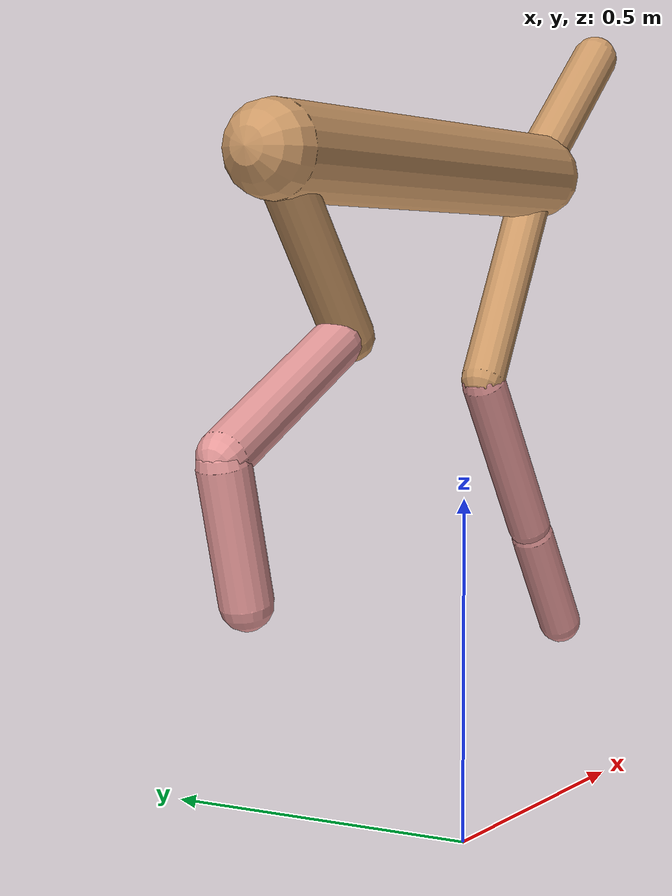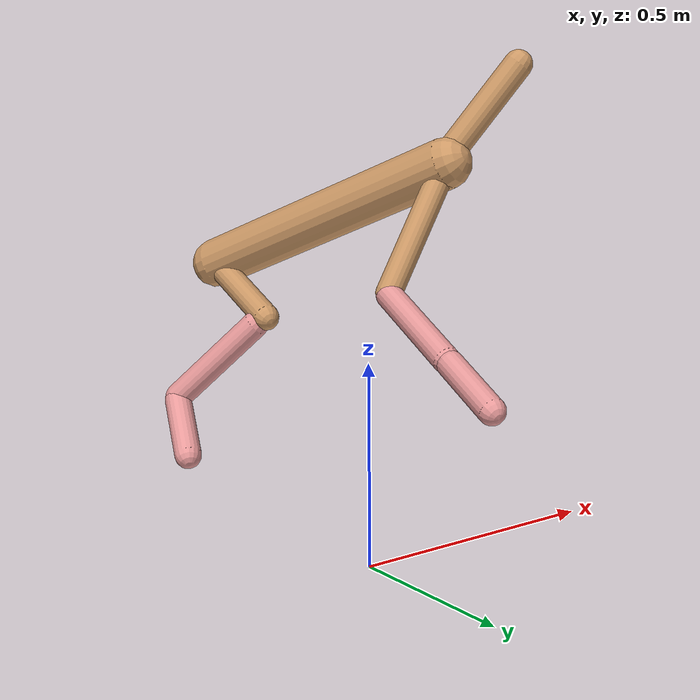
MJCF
<mujoco model="cheetah">
  <compiler angle="radian" coordinate="local" inertiafromgeom="true" settotalmass="14" />
  <default>
    <joint armature=".1" damping=".01" limited="true" solimplimit="0 .8 .03" solreflimit=".02 1" stiffness="8" />
    <geom conaffinity="0" condim="3" contype="1" friction="0.8 .1 .1" rgba="0.8 0.6 .4 1" solimp="0.0 0.8 0.01" solref="0.02 1" />
    <motor ctrllimited="true" ctrlrange="-1 1" />
  </default>
  <size nstack="300000" nuser_geom="1" />
  <option gravity="0 0 -9.81" timestep="0.01" />
  <worldbody>
    <body name="torso" pos="0.0 0.0 0.970992843800103">
      <joint armature="0" axis="1 0 0" damping="0" limited="false" name="ignorex" pos="0 0 0" stiffness="0" type="slide" />
      <joint armature="0" axis="0 0 1" damping="0" limited="false" name="ignorez" pos="0 0 0" stiffness="0" type="slide" />
      <joint armature="0" axis="0 1 0" damping="0" limited="false" name="ignorey" pos="0 0 0" stiffness="0" type="hinge" />
      <geom fromto="-0.5 0.0 0.0 0.23356832374449898 0.0 0.0" name="torso" size="0.06345967288166776" type="capsule" />
      <geom axisangle="0 1 0 .87" name="head" pos="0.33356832374449896 0.0 0.1" size="0.03525654536131194 0.15" type="capsule" />

      <body name="bthigh" pos="-.5 0 0">
        <joint axis="0 1 0" damping="6" name="bthigh" pos="0 0 0" range="-.52 1.05" stiffness="240" type="hinge" />
        <geom axisangle="0 1 0 -3.8" name="bthigh" pos="0.09482143383484307 0.0 -0.12326786398529599" size="0.03385045084102806 0.13650651998016225" type="capsule" />
        <body name="bshin" pos="0.14964286766968612 0.0 -0.23653572797059197">
          <joint axis="0 1 0" damping="4.5" name="bshin" pos="0 0 0" range="-.785 .785" stiffness="180" type="hinge" />
          <geom axisangle="0 1 0 -2.03" name="bshin" pos="-0.1321412419214234 0.0 -0.0660706209607117" rgba="0.9 0.6 0.6 1" size="0.03385045084102806 0.14121364135878853" type="capsule" />
          <body name="bfoot" pos="-0.2642824838428468 0.0 -0.1321412419214234">
            <joint axis="0 1 0" damping="3" name="bfoot" pos="0 0 0" range="-.4 .785" stiffness="120" type="hinge" />
            <geom axisangle="0 1 0 -.27" name="bfoot" pos="0.028373108815986727 0.0 -0.09173971850502376" rgba="0.9 0.6 0.6 1" size="0.03385045084102806 0.08849388191817414" type="capsule" />
            <inertial mass="10" />
          </body>
        </body>
      </body>
      <body name="fthigh" pos="0.23356832374449898 0.0 0.0">
        <joint axis="0 1 0" damping="4.5" name="fthigh" pos="0 0 0" range="-1.5 0.8" stiffness="180" type="hinge" />
        <geom axisangle="0 1 0 .52" name="fthigh" pos="-0.08899638472942237 0.0 -0.15256523096472405" size="0.0322 0.17070088726507712" type="capsule" />
        <body name="fshin" pos="-0.17799276945884474 0.0 -0.3051304619294481">
          <joint axis="0 1 0" damping="3" name="fshin" pos="0 0 0" range="-1.2 1.1" stiffness="120" type="hinge" />
          <geom axisangle="0 1 0 -.6" name="fshin" pos="0.08259242418584131 0.0 -0.11435874118039564" rgba="0.9 0.6 0.6 1" size="0.0322 0.13604732368494865" type="capsule" />
          <body name="ffoot" pos="0.16518484837168262 0.0 -0.22871748236079129">
            <joint axis="0 1 0" damping="1.5" name="ffoot" pos="0 0 0" range="-3.1 -0.3" stiffness="60" type="hinge" />
            <geom axisangle="0 1 0 -.6" name="ffoot" pos="0.05573002157254992 0.0 -0.08669114466841099" rgba="0.9 0.6 0.6 1" size="0.0322 0.08984257224477743" type="capsule" />
            <inertial mass="10" />
          </body>
        </body>
      </body>
    </body>
  </worldbody>
  <actuator>
    <motor gear="120" joint="bthigh" name="bthigh" />
    <motor gear="90" joint="bshin" name="bshin" />
    <motor gear="60" joint="bfoot" name="bfoot" />
    <motor gear="120" joint="fthigh" name="fthigh" />
    <motor gear="60" joint="fshin" name="fshin" />
    <motor gear="30" joint="ffoot" name="ffoot" />
  </actuator>
</mujoco>
